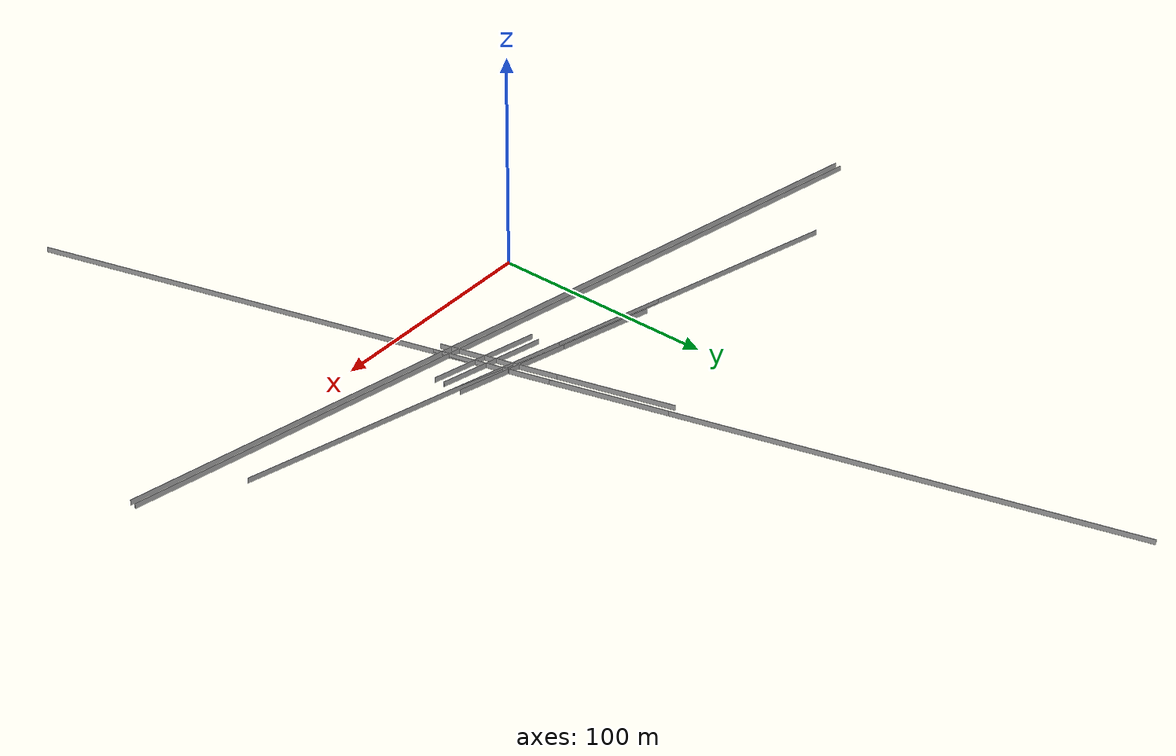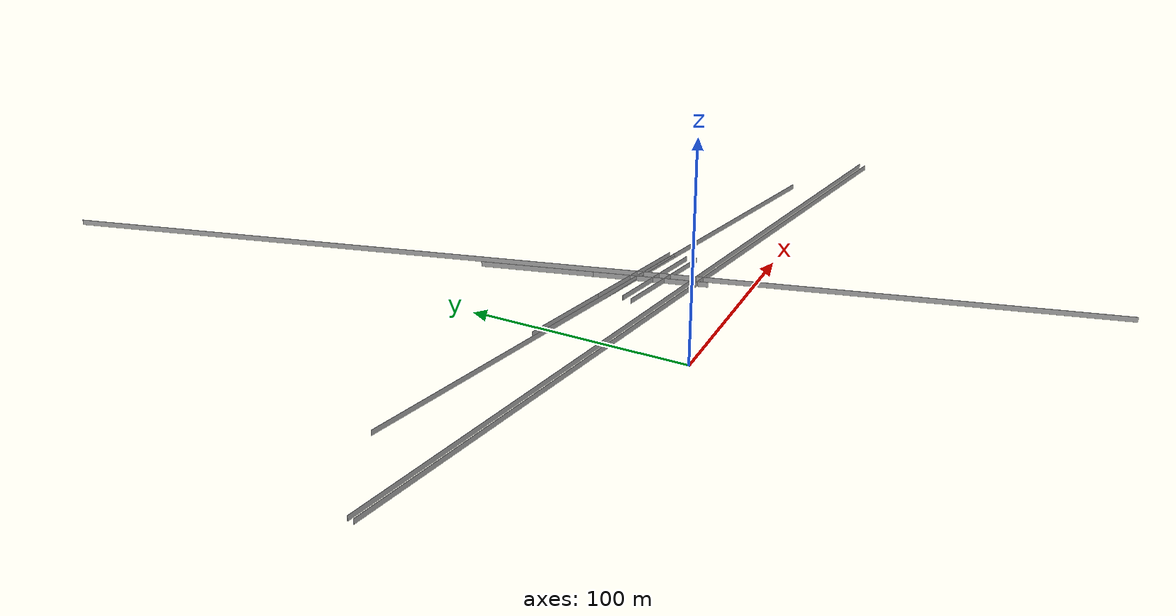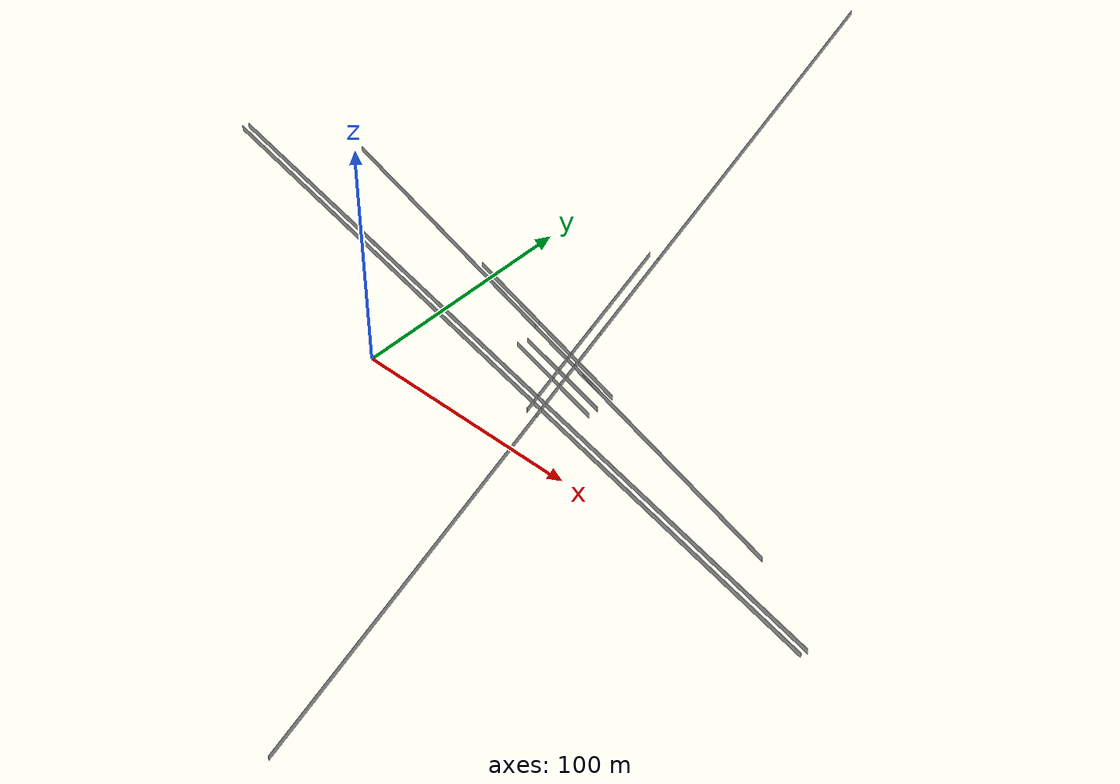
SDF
<?xml version="1.0" ?>
<sdf version="1.6">
  <model name="sps_0303">
    <pose frame="">0 0 0 0 -0 0</pose>
    <static>1</static>
    <self_collide>0</self_collide>
    <allow_auto_disable>0</allow_auto_disable>
    <link name="Wall4">
      <kinematic>0</kinematic>
      <gravity>1</gravity>
      <self_collide>0</self_collide>
      <collision name="collision">
        <geometry>
          <box>
            <size>43.073 0.15 2.5</size>
          </box>
        </geometry>
        <pose frame="">0 0 0 0 -0 0</pose>
      </collision>
      <visual name="visual">
        <geometry>
          <box>
            <size>43.073 0.15 2.5</size>
          </box>
        </geometry>
        <pose frame="">0 0 0 0 -0 0</pose>
        <cast_shadows>1</cast_shadows>
        <transparency>0.0</transparency>
      </visual>
      <pose frame="">13.5942 62.5971 1.25 0 0 -0.248456</pose>
    </link>
    <link name="Wall5">
      <kinematic>0</kinematic>
      <gravity>1</gravity>
      <self_collide>0</self_collide>
      <collision name="collision">
        <geometry>
          <box>
            <size>51.584 0.15 2.5</size>
          </box>
        </geometry>
        <pose frame="">0 0 0 0 -0 0</pose>
      </collision>
      <visual name="visual">
        <geometry>
          <box>
            <size>51.584 0.15 2.5</size>
          </box>
        </geometry>
        <pose frame="">0 0 0 0 -0 0</pose>
        <cast_shadows>1</cast_shadows>
        <transparency>0.0</transparency>
      </visual>
      <pose frame="">59.4694 50.9587 1.25 0 0 -0.248456</pose>
    </link>
    <link name="Wall94">
      <kinematic>0</kinematic>
      <gravity>1</gravity>
      <self_collide>0</self_collide>
      <collision name="collision">
        <geometry>
          <box>
            <size>51.7448 0.15 2.5</size>
          </box>
        </geometry>
        <pose frame="">0 0 0 0 -0 0</pose>
      </collision>
      <visual name="visual">
        <geometry>
          <box>
            <size>51.7448 0.15 2.5</size>
          </box>
        </geometry>
        <pose frame="">0 0 0 0 -0 0</pose>
        <cast_shadows>1</cast_shadows>
        <transparency>0.0</transparency>
      </visual>
      <pose frame="">63.3133 42.8931 1.25 0 -0 1.83122</pose>
    </link>
    <link name="Wall95">
      <kinematic>0</kinematic>
      <gravity>1</gravity>
      <self_collide>0</self_collide>
      <collision name="collision">
        <geometry>
          <box>
            <size>51.7448 0.15 2.5</size>
          </box>
        </geometry>
        <pose frame="">0 0 0 0 -0 0</pose>
      </collision>
      <visual name="visual">
        <geometry>
          <box>
            <size>51.7448 0.15 2.5</size>
          </box>
        </geometry>
        <pose frame="">0 0 0 0 -0 0</pose>
        <cast_shadows>1</cast_shadows>
        <transparency>0.0</transparency>
      </visual>
      <pose frame="">49.9894 92.8931 1.25 0 -0 1.83122</pose>
    </link>
    <link name="Wall406">
      <kinematic>0</kinematic>
      <gravity>1</gravity>
      <self_collide>0</self_collide>
      <collision name="collision">
        <geometry>
          <box>
            <size>51.5614 0.15 2.5</size>
          </box>
        </geometry>
        <pose frame="">0 0 0 0 -0 0</pose>
      </collision>
      <visual name="visual">
        <geometry>
          <box>
            <size>51.5614 0.15 2.5</size>
          </box>
        </geometry>
        <pose frame="">0 0 0 0 -0 0</pose>
        <cast_shadows>1</cast_shadows>
        <transparency>0.0</transparency>
      </visual>
      <pose frame="">59.4694 48.4647 1.25 0 -0 2.89487</pose>
    </link>
    <link name="Wall407">
      <kinematic>0</kinematic>
      <gravity>1</gravity>
      <self_collide>0</self_collide>
      <collision name="collision">
        <geometry>
          <box>
            <size>51.5614 0.15 2.5</size>
          </box>
        </geometry>
        <pose frame="">0 0 0 0 -0 0</pose>
      </collision>
      <visual name="visual">
        <geometry>
          <box>
            <size>51.5614 0.15 2.5</size>
          </box>
        </geometry>
        <pose frame="">0 0 0 0 -0 0</pose>
        <cast_shadows>1</cast_shadows>
        <transparency>0.0</transparency>
      </visual>
      <pose frame="">9.46944 61.0574 1.25 0 -0 2.89487</pose>
    </link>
    <link name="Wall415">
      <kinematic>0</kinematic>
      <gravity>1</gravity>
      <self_collide>0</self_collide>
      <collision name="collision">
        <geometry>
          <box>
            <size>49.0514 0.15 2.5</size>
          </box>
        </geometry>
        <pose frame="">0 0 0 0 -0 0</pose>
      </collision>
      <visual name="visual">
        <geometry>
          <box>
            <size>49.0514 0.15 2.5</size>
          </box>
        </geometry>
        <pose frame="">0 0 0 0 -0 0</pose>
        <cast_shadows>1</cast_shadows>
        <transparency>0.0</transparency>
      </visual>
      <pose frame="">60.5799 37.0054 1.25 0 -0 2.91334</pose>
    </link>
    <link name="Wall420">
      <kinematic>0</kinematic>
      <gravity>1</gravity>
      <self_collide>0</self_collide>
      <collision name="collision">
        <geometry>
          <box>
            <size>48.001 0.15 2.5</size>
          </box>
        </geometry>
        <pose frame="">0 0 0 0 -0 0</pose>
      </collision>
      <visual name="visual">
        <geometry>
          <box>
            <size>48.001 0.15 2.5</size>
          </box>
        </geometry>
        <pose frame="">0 0 0 0 -0 0</pose>
        <cast_shadows>1</cast_shadows>
        <transparency>0.0</transparency>
      </visual>
      <pose frame="">61.0915 41.5319 1.25 0 -0 2.91334</pose>
    </link>
    <link name="Wall500">
      <kinematic>0</kinematic>
      <gravity>1</gravity>
      <self_collide>0</self_collide>
      <collision name="collision">
        <geometry>
          <box>
            <size>51.7448 0.15 2.5</size>
          </box>
        </geometry>
        <pose frame="">0 0 0 0 -0 0</pose>
      </collision>
      <visual name="visual">
        <geometry>
          <box>
            <size>51.7448 0.15 2.5</size>
          </box>
        </geometry>
        <pose frame="">0 0 0 0 -0 0</pose>
        <cast_shadows>1</cast_shadows>
        <transparency>0.0</transparency>
      </visual>
      <pose frame="">58.6559 42.8931 1.25 0 -0 1.83122</pose>
    </link>
    <link name="Wall501">
      <kinematic>0</kinematic>
      <gravity>1</gravity>
      <self_collide>0</self_collide>
      <collision name="collision">
        <geometry>
          <box>
            <size>51.7448 0.15 2.5</size>
          </box>
        </geometry>
        <pose frame="">0 0 0 0 -0 0</pose>
      </collision>
      <visual name="visual">
        <geometry>
          <box>
            <size>51.7448 0.15 2.5</size>
          </box>
        </geometry>
        <pose frame="">0 0 0 0 -0 0</pose>
        <cast_shadows>1</cast_shadows>
        <transparency>0.0</transparency>
      </visual>
      <pose frame="">45.3319 92.8931 1.25 0 -0 1.83122</pose>
    </link>
    <link name="Wall1881">
      <kinematic>0</kinematic>
      <gravity>1</gravity>
      <self_collide>0</self_collide>
      <collision name="collision">
        <geometry>
          <box>
            <size>484.289 0.15 2.5</size>
          </box>
        </geometry>
        <pose frame="">0 0 0 0 -0 0</pose>
      </collision>
      <visual name="visual">
        <geometry>
          <box>
            <size>484.289 0.15 2.5</size>
          </box>
        </geometry>
        <pose frame="">0 0 0 0 -0 0</pose>
        <cast_shadows>1</cast_shadows>
        <transparency>0.0</transparency>
      </visual>
      <pose frame="">54.4969 75.9777 1.25 0 0 -1.31037</pose>
    </link>
    <link name="Wall1921">
      <kinematic>0</kinematic>
      <gravity>1</gravity>
      <self_collide>0</self_collide>
      <collision name="collision">
        <geometry>
          <box>
            <size>0.34394 0.15 2.5</size>
          </box>
        </geometry>
        <pose frame="">0 0 0 0 -0 0</pose>
      </collision>
      <visual name="visual">
        <geometry>
          <box>
            <size>0.34394 0.15 2.5</size>
          </box>
        </geometry>
        <pose frame="">0 0 0 0 -0 0</pose>
        <cast_shadows>1</cast_shadows>
        <transparency>0.0</transparency>
      </visual>
      <pose frame="">56.1251 51.8074 1.25 0 0 -0.248508</pose>
    </link>
    <link name="Wall1922">
      <kinematic>0</kinematic>
      <gravity>1</gravity>
      <self_collide>0</self_collide>
      <collision name="collision">
        <geometry>
          <box>
            <size>5.15328 0.15 2.5</size>
          </box>
        </geometry>
        <pose frame="">0 0 0 0 -0 0</pose>
      </collision>
      <visual name="visual">
        <geometry>
          <box>
            <size>5.15328 0.15 2.5</size>
          </box>
        </geometry>
        <pose frame="">0 0 0 0 -0 0</pose>
        <cast_shadows>1</cast_shadows>
        <transparency>0.0</transparency>
      </visual>
      <pose frame="">58.7893 51.1314 1.25 0 0 -0.248489</pose>
    </link>
    <link name="Wall1923">
      <kinematic>0</kinematic>
      <gravity>1</gravity>
      <self_collide>0</self_collide>
      <collision name="collision">
        <geometry>
          <box>
            <size>0.279826 0.15 2.5</size>
          </box>
        </geometry>
        <pose frame="">0 0 0 0 -0 0</pose>
      </collision>
      <visual name="visual">
        <geometry>
          <box>
            <size>0.279826 0.15 2.5</size>
          </box>
        </geometry>
        <pose frame="">0 0 0 0 -0 0</pose>
        <cast_shadows>1</cast_shadows>
        <transparency>0.0</transparency>
      </visual>
      <pose frame="">61.4224 50.4633 1.25 0 0 -0.248364</pose>
    </link>
    <link name="Wall1927">
      <kinematic>0</kinematic>
      <gravity>1</gravity>
      <self_collide>0</self_collide>
      <collision name="collision">
        <geometry>
          <box>
            <size>287.175 0.15 2.5</size>
          </box>
        </geometry>
        <pose frame="">0 0 0 0 -0 0</pose>
      </collision>
      <visual name="visual">
        <geometry>
          <box>
            <size>287.175 0.15 2.5</size>
          </box>
        </geometry>
        <pose frame="">0 0 0 0 -0 0</pose>
        <cast_shadows>1</cast_shadows>
        <transparency>0.0</transparency>
      </visual>
      <pose frame="">40.296 53.2936 1.25 0 -0 2.89487</pose>
    </link>
    <link name="Wall2708">
      <kinematic>0</kinematic>
      <gravity>1</gravity>
      <self_collide>0</self_collide>
      <collision name="collision">
        <geometry>
          <box>
            <size>372.322 0.15 2.5</size>
          </box>
        </geometry>
        <pose frame="">0 0 0 0 -0 0</pose>
      </collision>
      <visual name="visual">
        <geometry>
          <box>
            <size>372.322 0.15 2.5</size>
          </box>
        </geometry>
        <pose frame="">0 0 0 0 -0 0</pose>
        <cast_shadows>1</cast_shadows>
        <transparency>0.0</transparency>
      </visual>
      <pose frame="">34.8515 28.3938 1.25 0 0 -0.192774</pose>
    </link>
    <link name="Wall3551">
      <kinematic>0</kinematic>
      <gravity>1</gravity>
      <self_collide>0</self_collide>
      <collision name="collision">
        <geometry>
          <box>
            <size>372.316 0.15 2.5</size>
          </box>
        </geometry>
        <pose frame="">0 0 0 0 -0 0</pose>
      </collision>
      <visual name="visual">
        <geometry>
          <box>
            <size>372.316 0.15 2.5</size>
          </box>
        </geometry>
        <pose frame="">0 0 0 0 -0 0</pose>
        <cast_shadows>1</cast_shadows>
        <transparency>0.0</transparency>
      </visual>
      <pose frame="">35.4293 31.3377 1.25 0 0 -0.192773</pose>
    </link>
  </model>
</sdf>
